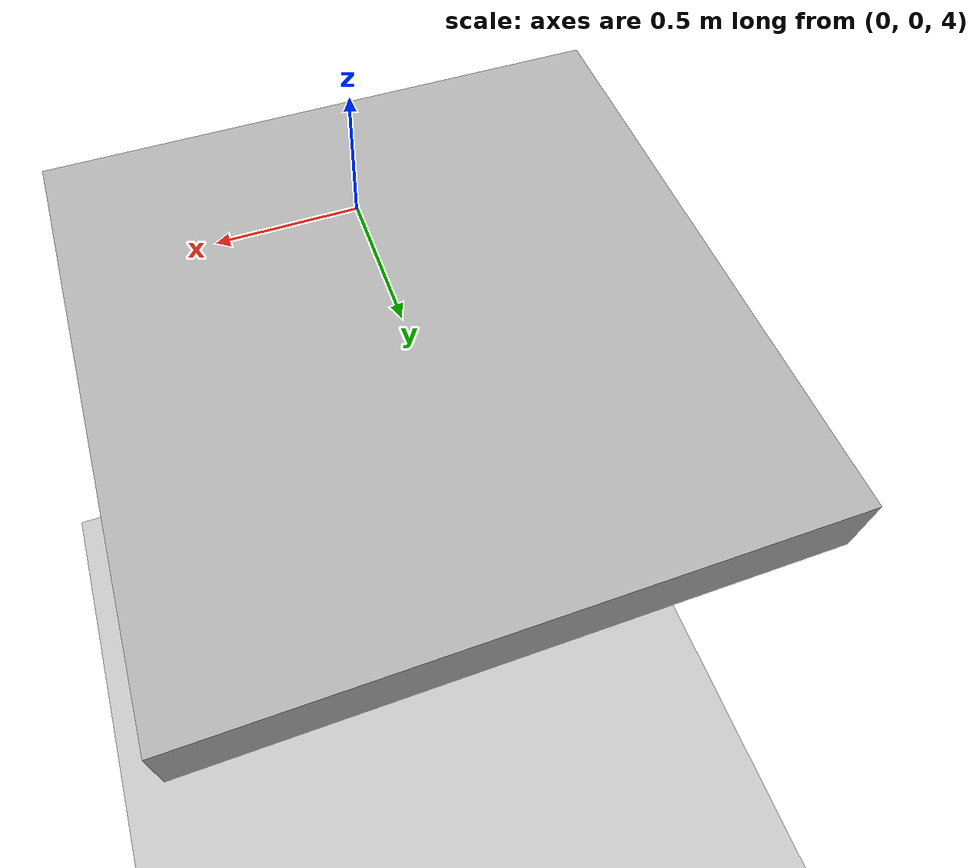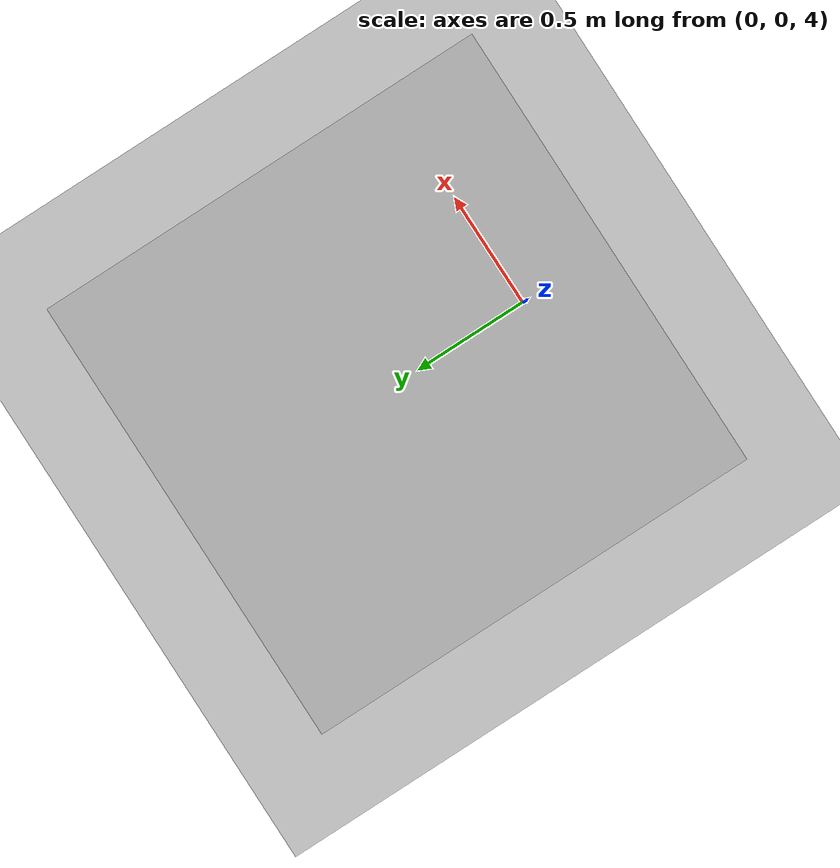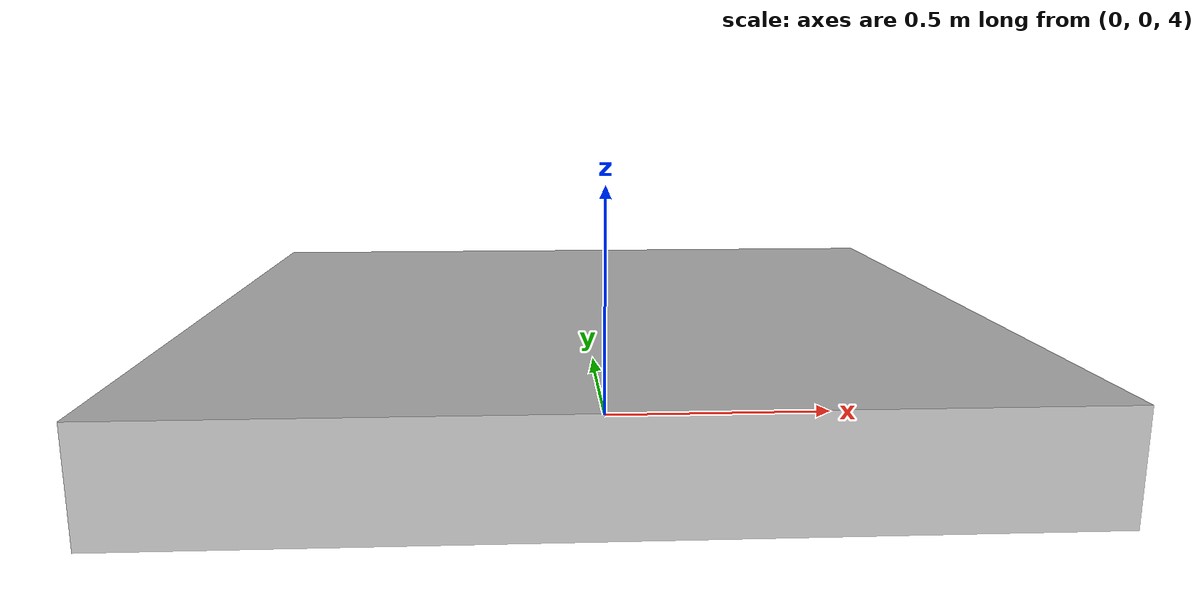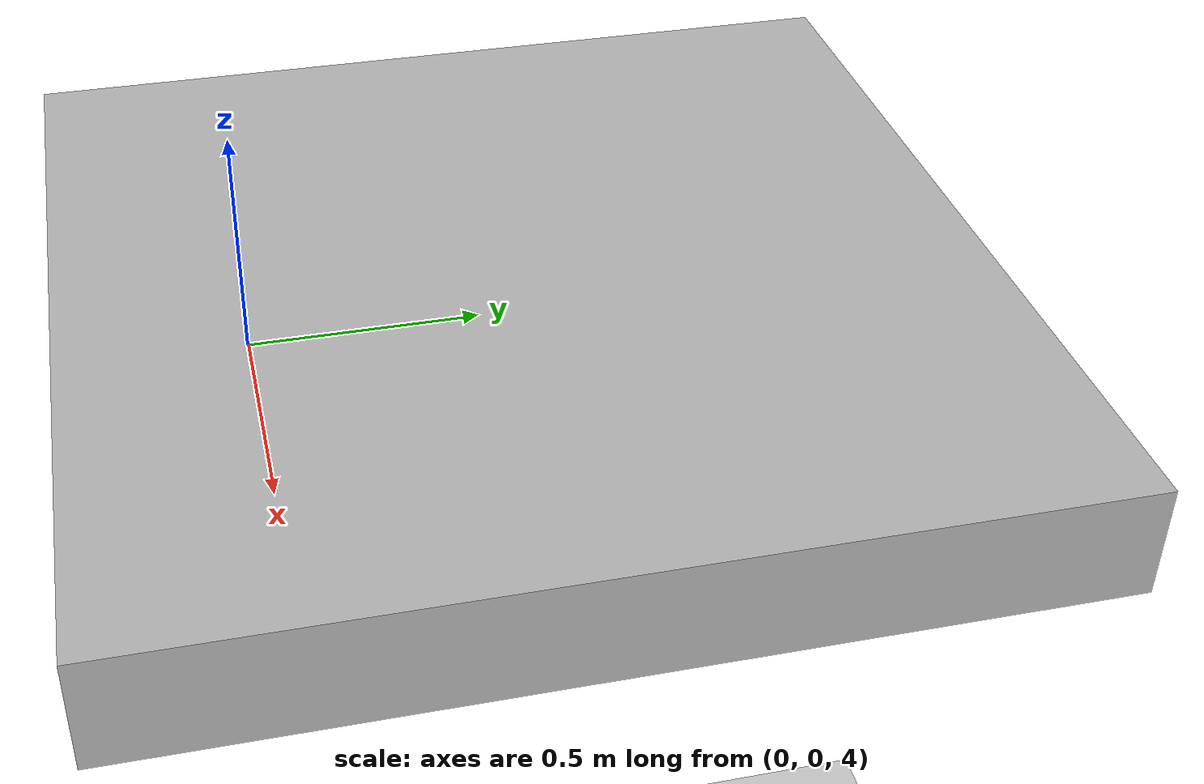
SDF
<?xml version="1.0" ?>
<sdf version="1.5">
  <world name="default">

  	 <!-- A global light source -->
  	 <include>
      <uri>model://sun</uri>
    </include>

    <!-- A ground plane -->
    <include>
      <uri>model://ground_plane</uri>
    </include>

    <light type="point" name="sun2">
    <cast_shadows>true</cast_shadows>
    <pose>0 0 2 1 0 0</pose>
    <diffuse>0.8 0.8 0.8 1</diffuse>
    <specular>0.2 0.2 0.2 1</specular>
    <attenuation>
      <range>1000</range>
      <constant>0.9</constant>
      <linear>0.01</linear>
      <quadratic>0.001</quadratic>
    </attenuation>

  </light>

    <include>
      <uri>model://plate</uri>
      <pose>0 0.6 4 0 0 0</pose>
    </include>

    <physics name='default_physics' default='0' type='ode'>
      <gravity>0 0 -9.8066</gravity>
      <ode>
        <solver>
          <type>quick</type>
          <iters>10</iters>
          <sor>1.3</sor>
          <use_dynamic_moi_rescaling>0</use_dynamic_moi_rescaling>
        </solver>
        <constraints>
          <cfm>0</cfm>
          <erp>0.2</erp>
          <contact_max_correcting_vel>100</contact_max_correcting_vel>
          <contact_surface_layer>0.001</contact_surface_layer>
        </constraints>
      </ode>
      <max_step_size>0.004</max_step_size>
      <real_time_factor>1</real_time_factor>
      <real_time_update_rate>250</real_time_update_rate>
      <magnetic_field>6.0e-6 2.3e-5 -4.2e-5</magnetic_field>
    </physics>

  </world>
</sdf>

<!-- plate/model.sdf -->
<sdf version="1.5">
  <model name="plate">
    <pose>0 0 0 0 0 0</pose>
    <static>true</static>
    <link name="link">
	<gravity>0</gravity>

      <collision name="collision">
        <geometry>
          <box>
              <size>1.5 1.0 0.2</size>
          </box>
        </geometry>
	<surface>
          <contact>
            <ode>
              <max_vel>0.1</max_vel>
              <min_depth>0.001</min_depth>
            </ode>
          </contact>
        </surface>
      </collision>
      <visual name="visual">
        <geometry>
          <mesh>
            <uri>model://plate/meshes/model.dae</uri>
          </mesh>
	</geometry>
      </visual>
    </link>
  </model>
</sdf>
